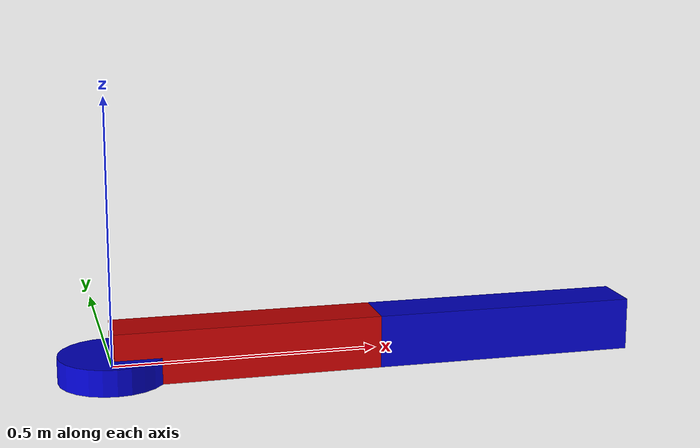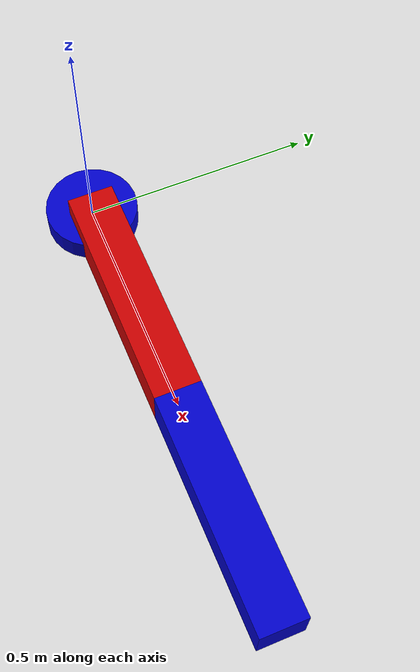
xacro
<?xml version="1.0"?>
<robot xmlns:xacro="http://www.ros.org/wiki/xacro" name="simple_arm">

    <!-- Materials -->
    <material name="blue">
        <color rgba="0 0 0.8 1"/>
    </material>
    <material name="red">
        <color rgba="0.8 0 0 1"/>
    </material>

    <!-- Base Link -->
    <link name="base_link">
        <visual>
            <geometry>
                <cylinder radius="0.1" length="0.05"/>
            </geometry>
            <material name="blue"/>
        </visual>
        <collision>
            <geometry>
                <cylinder radius="0.1" length="0.05"/>
            </geometry>
        </collision>
        <inertial>
            <mass value="1.0"/>
            <inertia ixx="0.0027" ixy="0.0" ixz="0.0" iyy="0.0027" iyz="0.0" izz="0.005"/>
        </inertial>
    </link>

    <!-- Link 1 -->
    <link name="link1">
        <visual>
            <geometry>
                <box size="0.5 0.1 0.1"/>
            </geometry>
            <origin xyz="0.25 0 0" rpy="0 0 0"/>
            <material name="red"/>
        </visual>
        <collision>
            <geometry>
                <box size="0.5 0.1 0.1"/>
            </geometry>
            <origin xyz="0.25 0 0" rpy="0 0 0"/>
        </collision>
        <inertial>
            <mass value="1.0"/>
            <inertia ixx="0.004" ixy="0.0" ixz="0.0" iyy="0.021" iyz="0.0" izz="0.021"/>
        </inertial>
    </link>

    <!-- Link 2 -->
    <link name="link2">
        <visual>
            <geometry>
                <box size="0.5 0.1 0.1"/>
            </geometry>
            <origin xyz="0.25 0 0" rpy="0 0 0"/>
            <material name="blue"/>
        </visual>
        <collision>
            <geometry>
                <box size="0.5 0.1 0.1"/>
            </geometry>
            <origin xyz="0.25 0 0" rpy="0 0 0"/>
        </collision>
        <inertial>
            <mass value="1.0"/>
            <inertia ixx="0.004" ixy="0.0" ixz="0.0" iyy="0.021" iyz="0.0" izz="0.021"/>
        </inertial>
    </link>

    <!-- Joints -->
    <joint name="base_link1_joint" type="revolute">
        <parent link="base_link"/>
        <child link="link1"/>
        <origin xyz="0 0 0.025" rpy="0 0 0"/>
        <axis xyz="0 0 1"/>
        <limit lower="-3.14" upper="3.14" effort="100" velocity="1"/>
    </joint>

    <joint name="link1_link2_joint" type="revolute">
        <parent link="link1"/>
        <child link="link2"/>
        <origin xyz="0.5 0 0" rpy="0 0 0"/>
        <axis xyz="0 1 0"/>
        <limit lower="-3.14" upper="3.14" effort="100" velocity="1"/>
    </joint>

    <!-- Gazebo plugin for joint state publisher -->

    <!-- ros2_control plugin -->
    <gazebo>
        <plugin name="gazebo_ros2_control" filename="libgazebo_ros2_control.so">
            <parameters>$(find simple_arm_description)/config/simple_arm_controllers.yaml</parameters>
        </plugin>
    </gazebo>

    <!-- ros2_control tags -->
    <ros2_control name="GazeboSystem" type="system">
        <hardware>
            <plugin>gazebo_ros2_control/GazeboSystem</plugin>
        </hardware>

        <joint name="base_link1_joint">
            <command_interface name="position">
                <param name="min">-3.14</param>
                <param name="max">3.14</param>
            </command_interface>
            <state_interface name="position"/>
            <state_interface name="velocity"/>
            <state_interface name="effort"/>
        </joint>

        <joint name="link1_link2_joint">
            <command_interface name="position">
                <param name="min">-3.14</param>
                <param name="max">3.14</param>
            </command_interface>
            <state_interface name="position"/>
            <state_interface name="velocity"/>
            <state_interface name="effort"/>
        </joint>
    </ros2_control>

    <!-- Gazebo materials -->
    <gazebo reference="base_link">
        <material>Gazebo/Blue</material>
    </gazebo>

    <gazebo reference="link1">
        <material>Gazebo/Red</material>
    </gazebo>

    <gazebo reference="link2">
        <material>Gazebo/Blue</material>
    </gazebo>

</robot>
